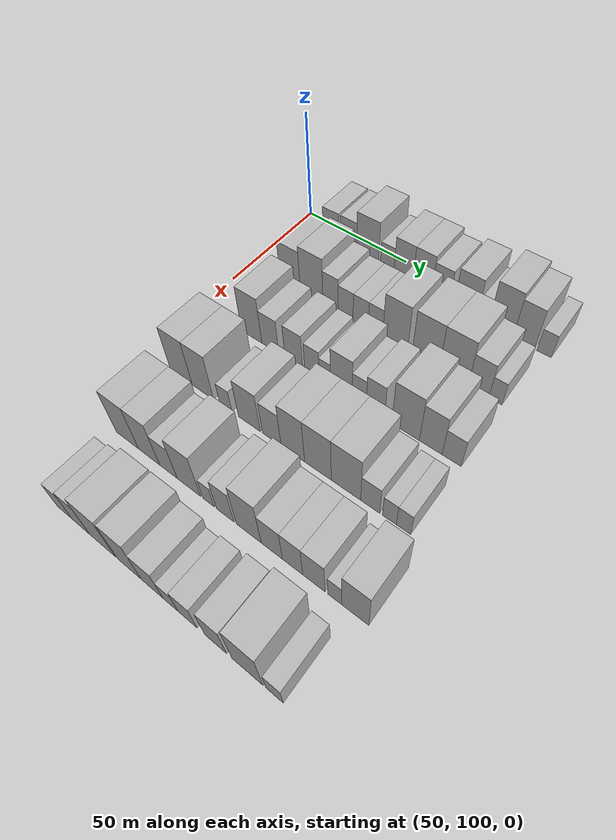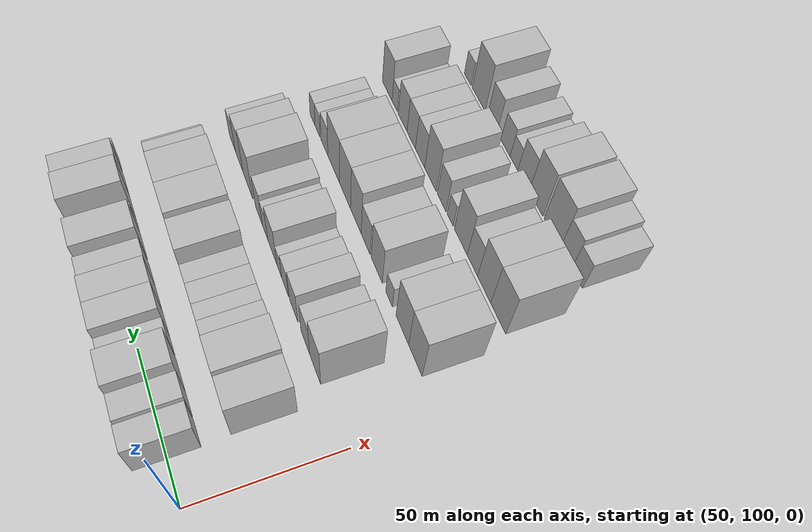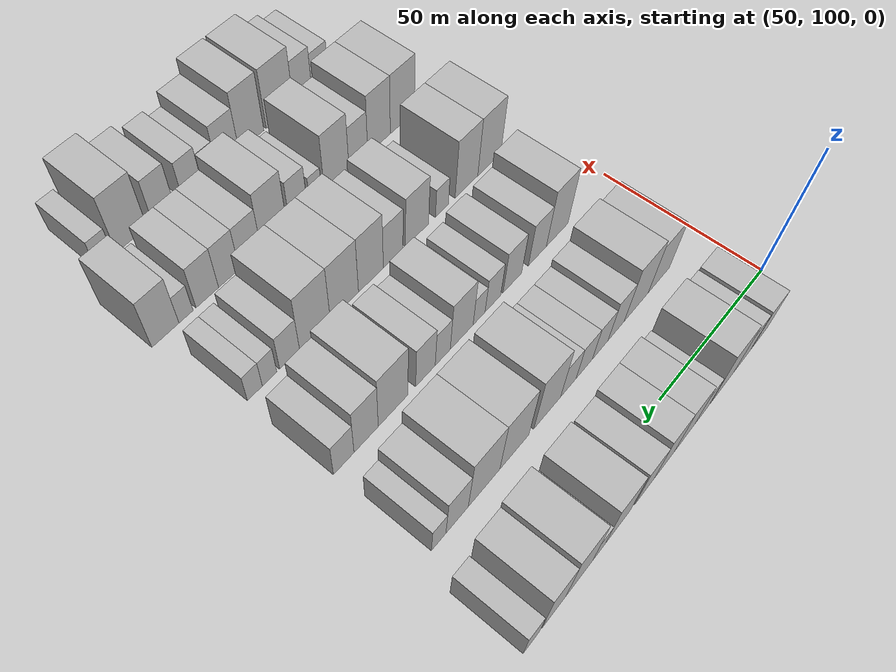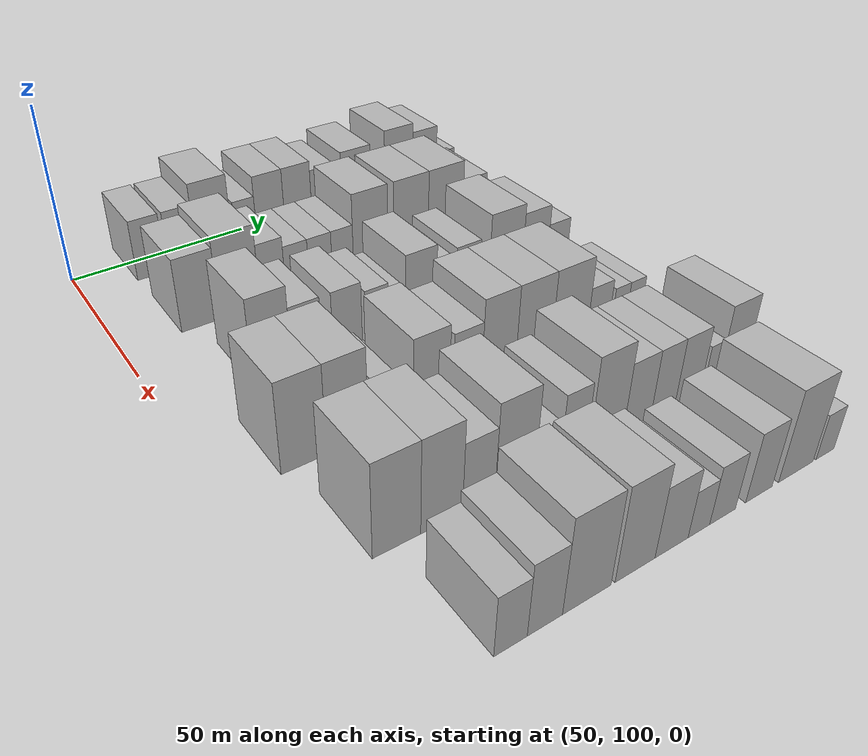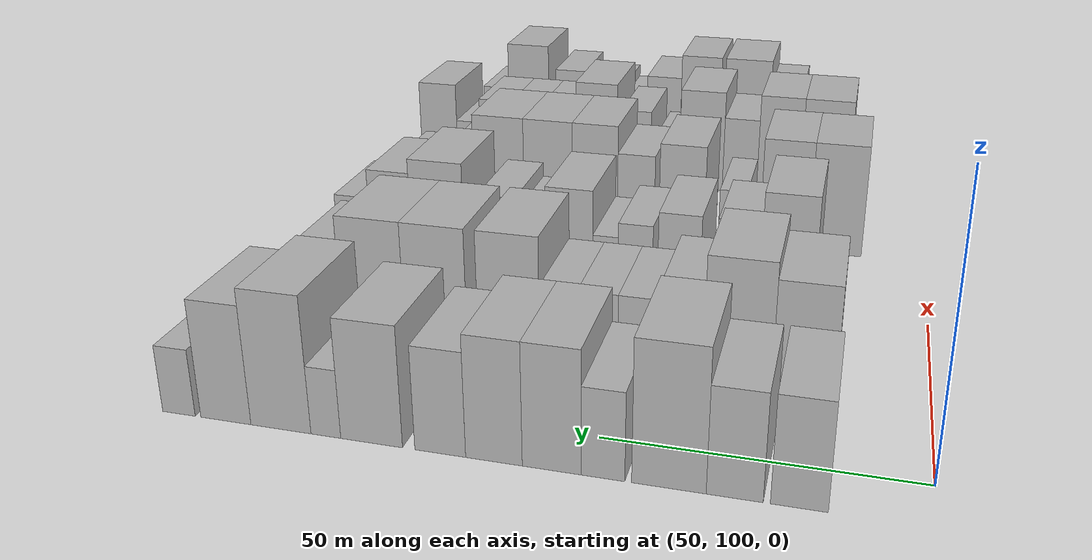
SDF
<sdf version="1.6">
 <world name="default">
  <model name="building_70">
   <static>1</static>
   <pose>50.0000 118.7033 0 0.000000 0.000000 0.000000</pose>
   <link name="link">
    <pose>0 0 9.00 0 0 0</pose>
    <collision name="collision"><geometry><box><size>20.0000 8.0889 18.0000</size></box></geometry></collision>
    <visual name="visual">
     <cast_shadows>0</cast_shadows>
     <geometry><box><size>20.0000 8.0889 18.0000</size></box></geometry>
     <material>
      <script>
       <uri>model://HANNAS_wall/materials/scripts</uri>
       <uri>model://HANNAS_wall/materials/textures</uri>
       <name>vrc/HANNAS_wall</name>
      </script>
     </material>
    </visual>
   </link>
  </model>
  <model name="building_71">
   <static>1</static>
   <pose>50.0000 127.8200 0 0.000000 0.000000 0.000000</pose>
   <link name="link">
    <pose>0 0 9.00 0 0 0</pose>
    <collision name="collision"><geometry><box><size>20.0000 8.1446 18.0000</size></box></geometry></collision>
    <visual name="visual">
     <cast_shadows>0</cast_shadows>
     <geometry><box><size>20.0000 8.1446 18.0000</size></box></geometry>
     <material>
      <script>
       <uri>model://HANNAS_wall/materials/scripts</uri>
       <uri>model://HANNAS_wall/materials/textures</uri>
       <name>vrc/HANNAS_wall</name>
      </script>
     </material>
    </visual>
   </link>
  </model>
  <model name="building_72">
   <static>1</static>
   <pose>50.0000 137.3575 0 0.000000 0.000000 0.000000</pose>
   <link name="link">
    <pose>0 0 12.00 0 0 0</pose>
    <collision name="collision"><geometry><box><size>20.0000 10.9302 24.0000</size></box></geometry></collision>
    <visual name="visual">
     <cast_shadows>0</cast_shadows>
     <geometry><box><size>20.0000 10.9302 24.0000</size></box></geometry>
     <material>
      <script>
       <uri>model://HANNAS_wall/materials/scripts</uri>
       <uri>model://HANNAS_wall/materials/textures</uri>
       <name>vrc/HANNAS_wall</name>
      </script>
     </material>
    </visual>
   </link>
  </model>
  <model name="building_73">
   <static>1</static>
   <pose>50.0000 147.1158 0 0.000000 0.000000 0.000000</pose>
   <link name="link">
    <pose>0 0 7.50 0 0 0</pose>
    <collision name="collision"><geometry><box><size>20.0000 6.5864 15.0000</size></box></geometry></collision>
    <visual name="visual">
     <cast_shadows>0</cast_shadows>
     <geometry><box><size>20.0000 6.5864 15.0000</size></box></geometry>
     <material>
      <script>
       <uri>model://HANNAS_wall/materials/scripts</uri>
       <uri>model://HANNAS_wall/materials/textures</uri>
       <name>vrc/HANNAS_wall</name>
      </script>
     </material>
    </visual>
   </link>
  </model>
  <model name="building_74">
   <static>1</static>
   <pose>50.0000 154.9128 0 0.000000 0.000000 0.000000</pose>
   <link name="link">
    <pose>0 0 10.50 0 0 0</pose>
    <collision name="collision"><geometry><box><size>20.0000 9.0077 21.0000</size></box></geometry></collision>
    <visual name="visual">
     <cast_shadows>0</cast_shadows>
     <geometry><box><size>20.0000 9.0077 21.0000</size></box></geometry>
     <material>
      <script>
       <uri>model://HANNAS_wall/materials/scripts</uri>
       <uri>model://HANNAS_wall/materials/textures</uri>
       <name>vrc/HANNAS_wall</name>
      </script>
     </material>
    </visual>
   </link>
  </model>
  <model name="building_75">
   <static>1</static>
   <pose>50.0000 163.8682 0 0.000000 0.000000 0.000000</pose>
   <link name="link">
    <pose>0 0 10.50 0 0 0</pose>
    <collision name="collision"><geometry><box><size>20.0000 8.9032 21.0000</size></box></geometry></collision>
    <visual name="visual">
     <cast_shadows>0</cast_shadows>
     <geometry><box><size>20.0000 8.9032 21.0000</size></box></geometry>
     <material>
      <script>
       <uri>model://HANNAS_wall/materials/scripts</uri>
       <uri>model://HANNAS_wall/materials/textures</uri>
       <name>vrc/HANNAS_wall</name>
      </script>
     </material>
    </visual>
   </link>
  </model>
  <model name="building_76">
   <static>1</static>
   <pose>50.0000 172.4005 0 0.000000 0.000000 0.000000</pose>
   <link name="link">
    <pose>0 0 9.00 0 0 0</pose>
    <collision name="collision"><geometry><box><size>20.0000 8.1613 18.0000</size></box></geometry></collision>
    <visual name="visual">
     <cast_shadows>0</cast_shadows>
     <geometry><box><size>20.0000 8.1613 18.0000</size></box></geometry>
     <material>
      <script>
       <uri>model://HANNAS_wall/materials/scripts</uri>
       <uri>model://HANNAS_wall/materials/textures</uri>
       <name>vrc/HANNAS_wall</name>
      </script>
     </material>
    </visual>
   </link>
  </model>
  <model name="building_77">
   <static>1</static>
   <pose>50.0000 183.5862 0 0.000000 0.000000 0.000000</pose>
   <link name="link">
    <pose>0 0 10.50 0 0 0</pose>
    <collision name="collision"><geometry><box><size>20.0000 10.2101 21.0000</size></box></geometry></collision>
    <visual name="visual">
     <cast_shadows>0</cast_shadows>
     <geometry><box><size>20.0000 10.2101 21.0000</size></box></geometry>
     <material>
      <script>
       <uri>model://HANNAS_wall/materials/scripts</uri>
       <uri>model://HANNAS_wall/materials/textures</uri>
       <name>vrc/HANNAS_wall</name>
      </script>
     </material>
    </visual>
   </link>
  </model>
  <model name="building_78">
   <static>1</static>
   <pose>50.0000 191.1960 0 0.000000 0.000000 0.000000</pose>
   <link name="link">
    <pose>0 0 6.00 0 0 0</pose>
    <collision name="collision"><geometry><box><size>20.0000 5.0096 12.0000</size></box></geometry></collision>
    <visual name="visual">
     <cast_shadows>0</cast_shadows>
     <geometry><box><size>20.0000 5.0096 12.0000</size></box></geometry>
     <material>
      <script>
       <uri>model://HANNAS_wall/materials/scripts</uri>
       <uri>model://HANNAS_wall/materials/textures</uri>
       <name>vrc/HANNAS_wall</name>
      </script>
     </material>
    </visual>
   </link>
  </model>
  <model name="building_79">
   <static>1</static>
   <pose>50.0000 198.8575 0 0.000000 0.000000 0.000000</pose>
   <link name="link">
    <pose>0 0 12.00 0 0 0</pose>
    <collision name="collision"><geometry><box><size>20.0000 10.3134 24.0000</size></box></geometry></collision>
    <visual name="visual">
     <cast_shadows>0</cast_shadows>
     <geometry><box><size>20.0000 10.3134 24.0000</size></box></geometry>
     <material>
      <script>
       <uri>model://HANNAS_wall/materials/scripts</uri>
       <uri>model://HANNAS_wall/materials/textures</uri>
       <name>vrc/HANNAS_wall</name>
      </script>
     </material>
    </visual>
   </link>
  </model>
  <model name="building_80">
   <static>1</static>
   <pose>50.0000 208.4200 0 0.000000 0.000000 0.000000</pose>
   <link name="link">
    <pose>0 0 10.50 0 0 0</pose>
    <collision name="collision"><geometry><box><size>20.0000 8.8116 21.0000</size></box></geometry></collision>
    <visual name="visual">
     <cast_shadows>0</cast_shadows>
     <geometry><box><size>20.0000 8.8116 21.0000</size></box></geometry>
     <material>
      <script>
       <uri>model://HANNAS_wall/materials/scripts</uri>
       <uri>model://HANNAS_wall/materials/textures</uri>
       <name>vrc/HANNAS_wall</name>
      </script>
     </material>
    </visual>
   </link>
  </model>
  <model name="building_81">
   <static>1</static>
   <pose>50.0000 216.7324 0 0.000000 0.000000 0.000000</pose>
   <link name="link">
    <pose>0 0 6.00 0 0 0</pose>
    <collision name="collision"><geometry><box><size>20.0000 5.8131 12.0000</size></box></geometry></collision>
    <visual name="visual">
     <cast_shadows>0</cast_shadows>
     <geometry><box><size>20.0000 5.8131 12.0000</size></box></geometry>
     <material>
      <script>
       <uri>model://HANNAS_wall/materials/scripts</uri>
       <uri>model://HANNAS_wall/materials/textures</uri>
       <name>vrc/HANNAS_wall</name>
      </script>
     </material>
    </visual>
   </link>
  </model>
  <model name="building_175">
   <static>1</static>
   <pose>79.0000 120.4273 0 0.000000 0.000000 0.000000</pose>
   <link name="link">
    <pose>0 0 10.50 0 0 0</pose>
    <collision name="collision"><geometry><box><size>20.0000 10.3157 21.0000</size></box></geometry></collision>
    <visual name="visual">
     <cast_shadows>0</cast_shadows>
     <geometry><box><size>20.0000 10.3157 21.0000</size></box></geometry>
     <material>
      <script>
       <uri>model://HANNAS_wall/materials/scripts</uri>
       <uri>model://HANNAS_wall/materials/textures</uri>
       <name>vrc/HANNAS_wall</name>
      </script>
     </material>
    </visual>
   </link>
  </model>
  <model name="building_176">
   <static>1</static>
   <pose>79.0000 131.2692 0 0.000000 0.000000 0.000000</pose>
   <link name="link">
    <pose>0 0 12.00 0 0 0</pose>
    <collision name="collision"><geometry><box><size>20.0000 11.3682 24.0000</size></box></geometry></collision>
    <visual name="visual">
     <cast_shadows>0</cast_shadows>
     <geometry><box><size>20.0000 11.3682 24.0000</size></box></geometry>
     <material>
      <script>
       <uri>model://HANNAS_wall/materials/scripts</uri>
       <uri>model://HANNAS_wall/materials/textures</uri>
       <name>vrc/HANNAS_wall</name>
      </script>
     </material>
    </visual>
   </link>
  </model>
  <model name="building_177">
   <static>1</static>
   <pose>79.0000 140.6771 0 0.000000 0.000000 0.000000</pose>
   <link name="link">
    <pose>0 0 9.00 0 0 0</pose>
    <collision name="collision"><geometry><box><size>20.0000 7.4476 18.0000</size></box></geometry></collision>
    <visual name="visual">
     <cast_shadows>0</cast_shadows>
     <geometry><box><size>20.0000 7.4476 18.0000</size></box></geometry>
     <material>
      <script>
       <uri>model://HANNAS_wall/materials/scripts</uri>
       <uri>model://HANNAS_wall/materials/textures</uri>
       <name>vrc/HANNAS_wall</name>
      </script>
     </material>
    </visual>
   </link>
  </model>
  <model name="building_178">
   <static>1</static>
   <pose>79.0000 147.9046 0 0.000000 0.000000 0.000000</pose>
   <link name="link">
    <pose>0 0 7.50 0 0 0</pose>
    <collision name="collision"><geometry><box><size>20.0000 7.0075 15.0000</size></box></geometry></collision>
    <visual name="visual">
     <cast_shadows>0</cast_shadows>
     <geometry><box><size>20.0000 7.0075 15.0000</size></box></geometry>
     <material>
      <script>
       <uri>model://HANNAS_wall/materials/scripts</uri>
       <uri>model://HANNAS_wall/materials/textures</uri>
       <name>vrc/HANNAS_wall</name>
      </script>
     </material>
    </visual>
   </link>
  </model>
  <model name="building_179">
   <static>1</static>
   <pose>79.0000 154.9412 0 0.000000 0.000000 0.000000</pose>
   <link name="link">
    <pose>0 0 7.50 0 0 0</pose>
    <collision name="collision"><geometry><box><size>20.0000 7.0657 15.0000</size></box></geometry></collision>
    <visual name="visual">
     <cast_shadows>0</cast_shadows>
     <geometry><box><size>20.0000 7.0657 15.0000</size></box></geometry>
     <material>
      <script>
       <uri>model://HANNAS_wall/materials/scripts</uri>
       <uri>model://HANNAS_wall/materials/textures</uri>
       <name>vrc/HANNAS_wall</name>
      </script>
     </material>
    </visual>
   </link>
  </model>
  <model name="building_180">
   <static>1</static>
   <pose>79.0000 161.7902 0 0.000000 0.000000 0.000000</pose>
   <link name="link">
    <pose>0 0 7.50 0 0 0</pose>
    <collision name="collision"><geometry><box><size>20.0000 6.6323 15.0000</size></box></geometry></collision>
    <visual name="visual">
     <cast_shadows>0</cast_shadows>
     <geometry><box><size>20.0000 6.6323 15.0000</size></box></geometry>
     <material>
      <script>
       <uri>model://HANNAS_wall/materials/scripts</uri>
       <uri>model://HANNAS_wall/materials/textures</uri>
       <name>vrc/HANNAS_wall</name>
      </script>
     </material>
    </visual>
   </link>
  </model>
  <model name="building_181">
   <static>1</static>
   <pose>79.0000 170.6382 0 0.000000 0.000000 0.000000</pose>
   <link name="link">
    <pose>0 0 12.00 0 0 0</pose>
    <collision name="collision"><geometry><box><size>20.0000 11.0636 24.0000</size></box></geometry></collision>
    <visual name="visual">
     <cast_shadows>0</cast_shadows>
     <geometry><box><size>20.0000 11.0636 24.0000</size></box></geometry>
     <material>
      <script>
       <uri>model://HANNAS_wall/materials/scripts</uri>
       <uri>model://HANNAS_wall/materials/textures</uri>
       <name>vrc/HANNAS_wall</name>
      </script>
     </material>
    </visual>
   </link>
  </model>
  <model name="building_182">
   <static>1</static>
   <pose>79.0000 183.9494 0 0.000000 0.000000 0.000000</pose>
   <link name="link">
    <pose>0 0 12.00 0 0 0</pose>
    <collision name="collision"><geometry><box><size>20.0000 11.5588 24.0000</size></box></geometry></collision>
    <visual name="visual">
     <cast_shadows>0</cast_shadows>
     <geometry><box><size>20.0000 11.5588 24.0000</size></box></geometry>
     <material>
      <script>
       <uri>model://HANNAS_wall/materials/scripts</uri>
       <uri>model://HANNAS_wall/materials/textures</uri>
       <name>vrc/HANNAS_wall</name>
      </script>
     </material>
    </visual>
   </link>
  </model>
  <model name="building_183">
   <static>1</static>
   <pose>79.0000 195.7155 0 0.000000 0.000000 0.000000</pose>
   <link name="link">
    <pose>0 0 12.00 0 0 0</pose>
    <collision name="collision"><geometry><box><size>20.0000 11.9734 24.0000</size></box></geometry></collision>
    <visual name="visual">
     <cast_shadows>0</cast_shadows>
     <geometry><box><size>20.0000 11.9734 24.0000</size></box></geometry>
     <material>
      <script>
       <uri>model://HANNAS_wall/materials/scripts</uri>
       <uri>model://HANNAS_wall/materials/textures</uri>
       <name>vrc/HANNAS_wall</name>
      </script>
     </material>
    </visual>
   </link>
  </model>
  <model name="building_184">
   <static>1</static>
   <pose>79.0000 205.8262 0 0.000000 0.000000 0.000000</pose>
   <link name="link">
    <pose>0 0 9.00 0 0 0</pose>
    <collision name="collision"><geometry><box><size>20.0000 8.2482 18.0000</size></box></geometry></collision>
    <visual name="visual">
     <cast_shadows>0</cast_shadows>
     <geometry><box><size>20.0000 8.2482 18.0000</size></box></geometry>
     <material>
      <script>
       <uri>model://HANNAS_wall/materials/scripts</uri>
       <uri>model://HANNAS_wall/materials/textures</uri>
       <name>vrc/HANNAS_wall</name>
      </script>
     </material>
    </visual>
   </link>
  </model>
  <model name="building_185">
   <static>1</static>
   <pose>79.0000 212.5347 0 0.000000 0.000000 0.000000</pose>
   <link name="link">
    <pose>0 0 6.00 0 0 0</pose>
    <collision name="collision"><geometry><box><size>20.0000 5.1687 12.0000</size></box></geometry></collision>
    <visual name="visual">
     <cast_shadows>0</cast_shadows>
     <geometry><box><size>20.0000 5.1687 12.0000</size></box></geometry>
     <material>
      <script>
       <uri>model://HANNAS_wall/materials/scripts</uri>
       <uri>model://HANNAS_wall/materials/textures</uri>
       <name>vrc/HANNAS_wall</name>
      </script>
     </material>
    </visual>
   </link>
  </model>
  <model name="building_290">
   <static>1</static>
   <pose>108.0000 125.8195 0 0.000000 0.000000 0.000000</pose>
   <link name="link">
    <pose>0 0 12.00 0 0 0</pose>
    <collision name="collision"><geometry><box><size>20.0000 10.0725 24.0000</size></box></geometry></collision>
    <visual name="visual">
     <cast_shadows>0</cast_shadows>
     <geometry><box><size>20.0000 10.0725 24.0000</size></box></geometry>
     <material>
      <script>
       <uri>model://HANNAS_wall/materials/scripts</uri>
       <uri>model://HANNAS_wall/materials/textures</uri>
       <name>vrc/HANNAS_wall</name>
      </script>
     </material>
    </visual>
   </link>
  </model>
  <model name="building_291">
   <static>1</static>
   <pose>108.0000 134.9345 0 0.000000 0.000000 0.000000</pose>
   <link name="link">
    <pose>0 0 9.00 0 0 0</pose>
    <collision name="collision"><geometry><box><size>20.0000 8.1575 18.0000</size></box></geometry></collision>
    <visual name="visual">
     <cast_shadows>0</cast_shadows>
     <geometry><box><size>20.0000 8.1575 18.0000</size></box></geometry>
     <material>
      <script>
       <uri>model://HANNAS_wall/materials/scripts</uri>
       <uri>model://HANNAS_wall/materials/textures</uri>
       <name>vrc/HANNAS_wall</name>
      </script>
     </material>
    </visual>
   </link>
  </model>
  <model name="building_292">
   <static>1</static>
   <pose>108.0000 146.1019 0 0.000000 0.000000 0.000000</pose>
   <link name="link">
    <pose>0 0 9.00 0 0 0</pose>
    <collision name="collision"><geometry><box><size>20.0000 8.1774 18.0000</size></box></geometry></collision>
    <visual name="visual">
     <cast_shadows>0</cast_shadows>
     <geometry><box><size>20.0000 8.1774 18.0000</size></box></geometry>
     <material>
      <script>
       <uri>model://HANNAS_wall/materials/scripts</uri>
       <uri>model://HANNAS_wall/materials/textures</uri>
       <name>vrc/HANNAS_wall</name>
      </script>
     </material>
    </visual>
   </link>
  </model>
  <model name="building_293">
   <static>1</static>
   <pose>108.0000 154.5231 0 0.000000 0.000000 0.000000</pose>
   <link name="link">
    <pose>0 0 7.50 0 0 0</pose>
    <collision name="collision"><geometry><box><size>20.0000 6.6649 15.0000</size></box></geometry></collision>
    <visual name="visual">
     <cast_shadows>0</cast_shadows>
     <geometry><box><size>20.0000 6.6649 15.0000</size></box></geometry>
     <material>
      <script>
       <uri>model://HANNAS_wall/materials/scripts</uri>
       <uri>model://HANNAS_wall/materials/textures</uri>
       <name>vrc/HANNAS_wall</name>
      </script>
     </material>
    </visual>
   </link>
  </model>
  <model name="building_294">
   <static>1</static>
   <pose>108.0000 160.3654 0 0.000000 0.000000 0.000000</pose>
   <link name="link">
    <pose>0 0 6.00 0 0 0</pose>
    <collision name="collision"><geometry><box><size>20.0000 5.0198 12.0000</size></box></geometry></collision>
    <visual name="visual">
     <cast_shadows>0</cast_shadows>
     <geometry><box><size>20.0000 5.0198 12.0000</size></box></geometry>
     <material>
      <script>
       <uri>model://HANNAS_wall/materials/scripts</uri>
       <uri>model://HANNAS_wall/materials/textures</uri>
       <name>vrc/HANNAS_wall</name>
      </script>
     </material>
    </visual>
   </link>
  </model>
  <model name="building_295">
   <static>1</static>
   <pose>108.0000 167.5524 0 0.000000 0.000000 0.000000</pose>
   <link name="link">
    <pose>0 0 10.50 0 0 0</pose>
    <collision name="collision"><geometry><box><size>20.0000 9.3542 21.0000</size></box></geometry></collision>
    <visual name="visual">
     <cast_shadows>0</cast_shadows>
     <geometry><box><size>20.0000 9.3542 21.0000</size></box></geometry>
     <material>
      <script>
       <uri>model://HANNAS_wall/materials/scripts</uri>
       <uri>model://HANNAS_wall/materials/textures</uri>
       <name>vrc/HANNAS_wall</name>
      </script>
     </material>
    </visual>
   </link>
  </model>
  <model name="building_296">
   <static>1</static>
   <pose>108.0000 175.2363 0 0.000000 0.000000 0.000000</pose>
   <link name="link">
    <pose>0 0 7.50 0 0 0</pose>
    <collision name="collision"><geometry><box><size>20.0000 6.0135 15.0000</size></box></geometry></collision>
    <visual name="visual">
     <cast_shadows>0</cast_shadows>
     <geometry><box><size>20.0000 6.0135 15.0000</size></box></geometry>
     <material>
      <script>
       <uri>model://HANNAS_wall/materials/scripts</uri>
       <uri>model://HANNAS_wall/materials/textures</uri>
       <name>vrc/HANNAS_wall</name>
      </script>
     </material>
    </visual>
   </link>
  </model>
  <model name="building_297">
   <static>1</static>
   <pose>108.0000 182.0620 0 0.000000 0.000000 0.000000</pose>
   <link name="link">
    <pose>0 0 9.00 0 0 0</pose>
    <collision name="collision"><geometry><box><size>20.0000 7.6379 18.0000</size></box></geometry></collision>
    <visual name="visual">
     <cast_shadows>0</cast_shadows>
     <geometry><box><size>20.0000 7.6379 18.0000</size></box></geometry>
     <material>
      <script>
       <uri>model://HANNAS_wall/materials/scripts</uri>
       <uri>model://HANNAS_wall/materials/textures</uri>
       <name>vrc/HANNAS_wall</name>
      </script>
     </material>
    </visual>
   </link>
  </model>
  <model name="building_298">
   <static>1</static>
   <pose>108.0000 194.4255 0 0.000000 0.000000 0.000000</pose>
   <link name="link">
    <pose>0 0 12.00 0 0 0</pose>
    <collision name="collision"><geometry><box><size>20.0000 11.0891 24.0000</size></box></geometry></collision>
    <visual name="visual">
     <cast_shadows>0</cast_shadows>
     <geometry><box><size>20.0000 11.0891 24.0000</size></box></geometry>
     <material>
      <script>
       <uri>model://HANNAS_wall/materials/scripts</uri>
       <uri>model://HANNAS_wall/materials/textures</uri>
       <name>vrc/HANNAS_wall</name>
      </script>
     </material>
    </visual>
   </link>
  </model>
  <model name="building_299">
   <static>1</static>
   <pose>108.0000 204.3585 0 0.000000 0.000000 0.000000</pose>
   <link name="link">
    <pose>0 0 10.50 0 0 0</pose>
    <collision name="collision"><geometry><box><size>20.0000 8.7770 21.0000</size></box></geometry></collision>
    <visual name="visual">
     <cast_shadows>0</cast_shadows>
     <geometry><box><size>20.0000 8.7770 21.0000</size></box></geometry>
     <material>
      <script>
       <uri>model://HANNAS_wall/materials/scripts</uri>
       <uri>model://HANNAS_wall/materials/textures</uri>
       <name>vrc/HANNAS_wall</name>
      </script>
     </material>
    </visual>
   </link>
  </model>
  <model name="building_300">
   <static>1</static>
   <pose>108.0000 212.3759 0 0.000000 0.000000 0.000000</pose>
   <link name="link">
    <pose>0 0 7.50 0 0 0</pose>
    <collision name="collision"><geometry><box><size>20.0000 7.2579 15.0000</size></box></geometry></collision>
    <visual name="visual">
     <cast_shadows>0</cast_shadows>
     <geometry><box><size>20.0000 7.2579 15.0000</size></box></geometry>
     <material>
      <script>
       <uri>model://HANNAS_wall/materials/scripts</uri>
       <uri>model://HANNAS_wall/materials/textures</uri>
       <name>vrc/HANNAS_wall</name>
      </script>
     </material>
    </visual>
   </link>
  </model>
  <model name="building_394">
   <static>1</static>
   <pose>137.0000 118.3097 0 0.000000 0.000000 0.000000</pose>
   <link name="link">
    <pose>0 0 12.00 0 0 0</pose>
    <collision name="collision"><geometry><box><size>20.0000 10.7246 24.0000</size></box></geometry></collision>
    <visual name="visual">
     <cast_shadows>0</cast_shadows>
     <geometry><box><size>20.0000 10.7246 24.0000</size></box></geometry>
     <material>
      <script>
       <uri>model://HANNAS_wall/materials/scripts</uri>
       <uri>model://HANNAS_wall/materials/textures</uri>
       <name>vrc/HANNAS_wall</name>
      </script>
     </material>
    </visual>
   </link>
  </model>
  <model name="building_395">
   <static>1</static>
   <pose>137.0000 128.8109 0 0.000000 0.000000 0.000000</pose>
   <link name="link">
    <pose>0 0 12.00 0 0 0</pose>
    <collision name="collision"><geometry><box><size>20.0000 10.2777 24.0000</size></box></geometry></collision>
    <visual name="visual">
     <cast_shadows>0</cast_shadows>
     <geometry><box><size>20.0000 10.2777 24.0000</size></box></geometry>
     <material>
      <script>
       <uri>model://HANNAS_wall/materials/scripts</uri>
       <uri>model://HANNAS_wall/materials/textures</uri>
       <name>vrc/HANNAS_wall</name>
      </script>
     </material>
    </visual>
   </link>
  </model>
  <model name="building_396">
   <static>1</static>
   <pose>137.0000 139.7769 0 0.000000 0.000000 0.000000</pose>
   <link name="link">
    <pose>0 0 6.00 0 0 0</pose>
    <collision name="collision"><geometry><box><size>20.0000 5.6543 12.0000</size></box></geometry></collision>
    <visual name="visual">
     <cast_shadows>0</cast_shadows>
     <geometry><box><size>20.0000 5.6543 12.0000</size></box></geometry>
     <material>
      <script>
       <uri>model://HANNAS_wall/materials/scripts</uri>
       <uri>model://HANNAS_wall/materials/textures</uri>
       <name>vrc/HANNAS_wall</name>
      </script>
     </material>
    </visual>
   </link>
  </model>
  <model name="building_397">
   <static>1</static>
   <pose>137.0000 150.5144 0 0.000000 0.000000 0.000000</pose>
   <link name="link">
    <pose>0 0 10.50 0 0 0</pose>
    <collision name="collision"><geometry><box><size>20.0000 9.8208 21.0000</size></box></geometry></collision>
    <visual name="visual">
     <cast_shadows>0</cast_shadows>
     <geometry><box><size>20.0000 9.8208 21.0000</size></box></geometry>
     <material>
      <script>
       <uri>model://HANNAS_wall/materials/scripts</uri>
       <uri>model://HANNAS_wall/materials/textures</uri>
       <name>vrc/HANNAS_wall</name>
      </script>
     </material>
    </visual>
   </link>
  </model>
  <model name="building_398">
   <static>1</static>
   <pose>137.0000 160.4591 0 0.000000 0.000000 0.000000</pose>
   <link name="link">
    <pose>0 0 9.00 0 0 0</pose>
    <collision name="collision"><geometry><box><size>20.0000 8.0686 18.0000</size></box></geometry></collision>
    <visual name="visual">
     <cast_shadows>0</cast_shadows>
     <geometry><box><size>20.0000 8.0686 18.0000</size></box></geometry>
     <material>
      <script>
       <uri>model://HANNAS_wall/materials/scripts</uri>
       <uri>model://HANNAS_wall/materials/textures</uri>
       <name>vrc/HANNAS_wall</name>
      </script>
     </material>
    </visual>
   </link>
  </model>
  <model name="building_399">
   <static>1</static>
   <pose>137.0000 169.4658 0 0.000000 0.000000 0.000000</pose>
   <link name="link">
    <pose>0 0 12.00 0 0 0</pose>
    <collision name="collision"><geometry><box><size>20.0000 9.9449 24.0000</size></box></geometry></collision>
    <visual name="visual">
     <cast_shadows>0</cast_shadows>
     <geometry><box><size>20.0000 9.9449 24.0000</size></box></geometry>
     <material>
      <script>
       <uri>model://HANNAS_wall/materials/scripts</uri>
       <uri>model://HANNAS_wall/materials/textures</uri>
       <name>vrc/HANNAS_wall</name>
      </script>
     </material>
    </visual>
   </link>
  </model>
  <model name="building_400">
   <static>1</static>
   <pose>137.0000 179.9068 0 0.000000 0.000000 0.000000</pose>
   <link name="link">
    <pose>0 0 12.00 0 0 0</pose>
    <collision name="collision"><geometry><box><size>20.0000 10.9370 24.0000</size></box></geometry></collision>
    <visual name="visual">
     <cast_shadows>0</cast_shadows>
     <geometry><box><size>20.0000 10.9370 24.0000</size></box></geometry>
     <material>
      <script>
       <uri>model://HANNAS_wall/materials/scripts</uri>
       <uri>model://HANNAS_wall/materials/textures</uri>
       <name>vrc/HANNAS_wall</name>
      </script>
     </material>
    </visual>
   </link>
  </model>
  <model name="building_401">
   <static>1</static>
   <pose>137.0000 191.1265 0 0.000000 0.000000 0.000000</pose>
   <link name="link">
    <pose>0 0 12.00 0 0 0</pose>
    <collision name="collision"><geometry><box><size>20.0000 11.5024 24.0000</size></box></geometry></collision>
    <visual name="visual">
     <cast_shadows>0</cast_shadows>
     <geometry><box><size>20.0000 11.5024 24.0000</size></box></geometry>
     <material>
      <script>
       <uri>model://HANNAS_wall/materials/scripts</uri>
       <uri>model://HANNAS_wall/materials/textures</uri>
       <name>vrc/HANNAS_wall</name>
      </script>
     </material>
    </visual>
   </link>
  </model>
  <model name="building_402">
   <static>1</static>
   <pose>137.0000 200.4938 0 0.000000 0.000000 0.000000</pose>
   <link name="link">
    <pose>0 0 7.50 0 0 0</pose>
    <collision name="collision"><geometry><box><size>20.0000 7.2321 15.0000</size></box></geometry></collision>
    <visual name="visual">
     <cast_shadows>0</cast_shadows>
     <geometry><box><size>20.0000 7.2321 15.0000</size></box></geometry>
     <material>
      <script>
       <uri>model://HANNAS_wall/materials/scripts</uri>
       <uri>model://HANNAS_wall/materials/textures</uri>
       <name>vrc/HANNAS_wall</name>
      </script>
     </material>
    </visual>
   </link>
  </model>
  <model name="building_403">
   <static>1</static>
   <pose>137.0000 207.6839 0 0.000000 0.000000 0.000000</pose>
   <link name="link">
    <pose>0 0 6.00 0 0 0</pose>
    <collision name="collision"><geometry><box><size>20.0000 5.1481 12.0000</size></box></geometry></collision>
    <visual name="visual">
     <cast_shadows>0</cast_shadows>
     <geometry><box><size>20.0000 5.1481 12.0000</size></box></geometry>
     <material>
      <script>
       <uri>model://HANNAS_wall/materials/scripts</uri>
       <uri>model://HANNAS_wall/materials/textures</uri>
       <name>vrc/HANNAS_wall</name>
      </script>
     </material>
    </visual>
   </link>
  </model>
  <model name="building_404">
   <static>1</static>
   <pose>137.0000 212.8643 0 0.000000 0.000000 0.000000</pose>
   <link name="link">
    <pose>0 0 6.00 0 0 0</pose>
    <collision name="collision"><geometry><box><size>20.0000 5.2127 12.0000</size></box></geometry></collision>
    <visual name="visual">
     <cast_shadows>0</cast_shadows>
     <geometry><box><size>20.0000 5.2127 12.0000</size></box></geometry>
     <material>
      <script>
       <uri>model://HANNAS_wall/materials/scripts</uri>
       <uri>model://HANNAS_wall/materials/textures</uri>
       <name>vrc/HANNAS_wall</name>
      </script>
     </material>
    </visual>
   </link>
  </model>
  <model name="building_514">
   <static>1</static>
   <pose>166.0000 122.3892 0 0.000000 0.000000 0.000000</pose>
   <link name="link">
    <pose>0 0 12.00 0 0 0</pose>
    <collision name="collision"><geometry><box><size>20.0000 10.9018 24.0000</size></box></geometry></collision>
    <visual name="visual">
     <cast_shadows>0</cast_shadows>
     <geometry><box><size>20.0000 10.9018 24.0000</size></box></geometry>
     <material>
      <script>
       <uri>model://HANNAS_wall/materials/scripts</uri>
       <uri>model://HANNAS_wall/materials/textures</uri>
       <name>vrc/HANNAS_wall</name>
      </script>
     </material>
    </visual>
   </link>
  </model>
  <model name="building_515">
   <static>1</static>
   <pose>166.0000 132.8039 0 0.000000 0.000000 0.000000</pose>
   <link name="link">
    <pose>0 0 12.00 0 0 0</pose>
    <collision name="collision"><geometry><box><size>20.0000 9.9276 24.0000</size></box></geometry></collision>
    <visual name="visual">
     <cast_shadows>0</cast_shadows>
     <geometry><box><size>20.0000 9.9276 24.0000</size></box></geometry>
     <material>
      <script>
       <uri>model://HANNAS_wall/materials/scripts</uri>
       <uri>model://HANNAS_wall/materials/textures</uri>
       <name>vrc/HANNAS_wall</name>
      </script>
     </material>
    </visual>
   </link>
  </model>
  <model name="building_516">
   <static>1</static>
   <pose>166.0000 141.7629 0 0.000000 0.000000 0.000000</pose>
   <link name="link">
    <pose>0 0 9.00 0 0 0</pose>
    <collision name="collision"><geometry><box><size>20.0000 7.9904 18.0000</size></box></geometry></collision>
    <visual name="visual">
     <cast_shadows>0</cast_shadows>
     <geometry><box><size>20.0000 7.9904 18.0000</size></box></geometry>
     <material>
      <script>
       <uri>model://HANNAS_wall/materials/scripts</uri>
       <uri>model://HANNAS_wall/materials/textures</uri>
       <name>vrc/HANNAS_wall</name>
      </script>
     </material>
    </visual>
   </link>
  </model>
  <model name="building_517">
   <static>1</static>
   <pose>166.0000 150.9082 0 0.000000 0.000000 0.000000</pose>
   <link name="link">
    <pose>0 0 12.00 0 0 0</pose>
    <collision name="collision"><geometry><box><size>20.0000 10.3003 24.0000</size></box></geometry></collision>
    <visual name="visual">
     <cast_shadows>0</cast_shadows>
     <geometry><box><size>20.0000 10.3003 24.0000</size></box></geometry>
     <material>
      <script>
       <uri>model://HANNAS_wall/materials/scripts</uri>
       <uri>model://HANNAS_wall/materials/textures</uri>
       <name>vrc/HANNAS_wall</name>
      </script>
     </material>
    </visual>
   </link>
  </model>
  <model name="building_518">
   <static>1</static>
   <pose>166.0000 159.4893 0 0.000000 0.000000 0.000000</pose>
   <link name="link">
    <pose>0 0 6.00 0 0 0</pose>
    <collision name="collision"><geometry><box><size>20.0000 4.8619 12.0000</size></box></geometry></collision>
    <visual name="visual">
     <cast_shadows>0</cast_shadows>
     <geometry><box><size>20.0000 4.8619 12.0000</size></box></geometry>
     <material>
      <script>
       <uri>model://HANNAS_wall/materials/scripts</uri>
       <uri>model://HANNAS_wall/materials/textures</uri>
       <name>vrc/HANNAS_wall</name>
      </script>
     </material>
    </visual>
   </link>
  </model>
  <model name="building_519">
   <static>1</static>
   <pose>166.0000 166.5242 0 0.000000 0.000000 0.000000</pose>
   <link name="link">
    <pose>0 0 9.00 0 0 0</pose>
    <collision name="collision"><geometry><box><size>20.0000 7.2081 18.0000</size></box></geometry></collision>
    <visual name="visual">
     <cast_shadows>0</cast_shadows>
     <geometry><box><size>20.0000 7.2081 18.0000</size></box></geometry>
     <material>
      <script>
       <uri>model://HANNAS_wall/materials/scripts</uri>
       <uri>model://HANNAS_wall/materials/textures</uri>
       <name>vrc/HANNAS_wall</name>
      </script>
     </material>
    </visual>
   </link>
  </model>
  <model name="building_520">
   <static>1</static>
   <pose>166.0000 176.1526 0 0.000000 0.000000 0.000000</pose>
   <link name="link">
    <pose>0 0 12.00 0 0 0</pose>
    <collision name="collision"><geometry><box><size>20.0000 10.0488 24.0000</size></box></geometry></collision>
    <visual name="visual">
     <cast_shadows>0</cast_shadows>
     <geometry><box><size>20.0000 10.0488 24.0000</size></box></geometry>
     <material>
      <script>
       <uri>model://HANNAS_wall/materials/scripts</uri>
       <uri>model://HANNAS_wall/materials/textures</uri>
       <name>vrc/HANNAS_wall</name>
      </script>
     </material>
    </visual>
   </link>
  </model>
  <model name="building_521">
   <static>1</static>
   <pose>166.0000 185.3236 0 0.000000 0.000000 0.000000</pose>
   <link name="link">
    <pose>0 0 9.00 0 0 0</pose>
    <collision name="collision"><geometry><box><size>20.0000 8.2933 18.0000</size></box></geometry></collision>
    <visual name="visual">
     <cast_shadows>0</cast_shadows>
     <geometry><box><size>20.0000 8.2933 18.0000</size></box></geometry>
     <material>
      <script>
       <uri>model://HANNAS_wall/materials/scripts</uri>
       <uri>model://HANNAS_wall/materials/textures</uri>
       <name>vrc/HANNAS_wall</name>
      </script>
     </material>
    </visual>
   </link>
  </model>
  <model name="building_522">
   <static>1</static>
   <pose>166.0000 193.2935 0 0.000000 0.000000 0.000000</pose>
   <link name="link">
    <pose>0 0 9.00 0 0 0</pose>
    <collision name="collision"><geometry><box><size>20.0000 7.6464 18.0000</size></box></geometry></collision>
    <visual name="visual">
     <cast_shadows>0</cast_shadows>
     <geometry><box><size>20.0000 7.6464 18.0000</size></box></geometry>
     <material>
      <script>
       <uri>model://HANNAS_wall/materials/scripts</uri>
       <uri>model://HANNAS_wall/materials/textures</uri>
       <name>vrc/HANNAS_wall</name>
      </script>
     </material>
    </visual>
   </link>
  </model>
  <model name="building_523">
   <static>1</static>
   <pose>166.0000 201.1977 0 0.000000 0.000000 0.000000</pose>
   <link name="link">
    <pose>0 0 9.00 0 0 0</pose>
    <collision name="collision"><geometry><box><size>20.0000 8.1620 18.0000</size></box></geometry></collision>
    <visual name="visual">
     <cast_shadows>0</cast_shadows>
     <geometry><box><size>20.0000 8.1620 18.0000</size></box></geometry>
     <material>
      <script>
       <uri>model://HANNAS_wall/materials/scripts</uri>
       <uri>model://HANNAS_wall/materials/textures</uri>
       <name>vrc/HANNAS_wall</name>
      </script>
     </material>
    </visual>
   </link>
  </model>
  <model name="building_524">
   <static>1</static>
   <pose>166.0000 208.7544 0 0.000000 0.000000 0.000000</pose>
   <link name="link">
    <pose>0 0 6.00 0 0 0</pose>
    <collision name="collision"><geometry><box><size>20.0000 4.9515 12.0000</size></box></geometry></collision>
    <visual name="visual">
     <cast_shadows>0</cast_shadows>
     <geometry><box><size>20.0000 4.9515 12.0000</size></box></geometry>
     <material>
      <script>
       <uri>model://HANNAS_wall/materials/scripts</uri>
       <uri>model://HANNAS_wall/materials/textures</uri>
       <name>vrc/HANNAS_wall</name>
      </script>
     </material>
    </visual>
   </link>
  </model>
  <model name="building_525">
   <static>1</static>
   <pose>166.0000 215.9018 0 0.000000 0.000000 0.000000</pose>
   <link name="link">
    <pose>0 0 10.50 0 0 0</pose>
    <collision name="collision"><geometry><box><size>20.0000 9.3433 21.0000</size></box></geometry></collision>
    <visual name="visual">
     <cast_shadows>0</cast_shadows>
     <geometry><box><size>20.0000 9.3433 21.0000</size></box></geometry>
     <material>
      <script>
       <uri>model://HANNAS_wall/materials/scripts</uri>
       <uri>model://HANNAS_wall/materials/textures</uri>
       <name>vrc/HANNAS_wall</name>
      </script>
     </material>
    </visual>
   </link>
  </model>
  <model name="building_626">
   <static>1</static>
   <pose>195.0000 126.4914 0 0.000000 0.000000 0.000000</pose>
   <link name="link">
    <pose>0 0 7.50 0 0 0</pose>
    <collision name="collision"><geometry><box><size>20.0000 7.2675 15.0000</size></box></geometry></collision>
    <visual name="visual">
     <cast_shadows>0</cast_shadows>
     <geometry><box><size>20.0000 7.2675 15.0000</size></box></geometry>
     <material>
      <script>
       <uri>model://HANNAS_wall/materials/scripts</uri>
       <uri>model://HANNAS_wall/materials/textures</uri>
       <name>vrc/HANNAS_wall</name>
      </script>
     </material>
    </visual>
   </link>
  </model>
  <model name="building_627">
   <static>1</static>
   <pose>195.0000 134.1030 0 0.000000 0.000000 0.000000</pose>
   <link name="link">
    <pose>0 0 9.00 0 0 0</pose>
    <collision name="collision"><geometry><box><size>20.0000 7.9558 18.0000</size></box></geometry></collision>
    <visual name="visual">
     <cast_shadows>0</cast_shadows>
     <geometry><box><size>20.0000 7.9558 18.0000</size></box></geometry>
     <material>
      <script>
       <uri>model://HANNAS_wall/materials/scripts</uri>
       <uri>model://HANNAS_wall/materials/textures</uri>
       <name>vrc/HANNAS_wall</name>
      </script>
     </material>
    </visual>
   </link>
  </model>
  <model name="building_628">
   <static>1</static>
   <pose>195.0000 143.8709 0 0.000000 0.000000 0.000000</pose>
   <link name="link">
    <pose>0 0 12.00 0 0 0</pose>
    <collision name="collision"><geometry><box><size>20.0000 11.5799 24.0000</size></box></geometry></collision>
    <visual name="visual">
     <cast_shadows>0</cast_shadows>
     <geometry><box><size>20.0000 11.5799 24.0000</size></box></geometry>
     <material>
      <script>
       <uri>model://HANNAS_wall/materials/scripts</uri>
       <uri>model://HANNAS_wall/materials/textures</uri>
       <name>vrc/HANNAS_wall</name>
      </script>
     </material>
    </visual>
   </link>
  </model>
  <model name="building_629">
   <static>1</static>
   <pose>195.0000 155.7382 0 0.000000 0.000000 0.000000</pose>
   <link name="link">
    <pose>0 0 12.00 0 0 0</pose>
    <collision name="collision"><geometry><box><size>20.0000 10.1548 24.0000</size></box></geometry></collision>
    <visual name="visual">
     <cast_shadows>0</cast_shadows>
     <geometry><box><size>20.0000 10.1548 24.0000</size></box></geometry>
     <material>
      <script>
       <uri>model://HANNAS_wall/materials/scripts</uri>
       <uri>model://HANNAS_wall/materials/textures</uri>
       <name>vrc/HANNAS_wall</name>
      </script>
     </material>
    </visual>
   </link>
  </model>
  <model name="building_630">
   <static>1</static>
   <pose>195.0000 165.2311 0 0.000000 0.000000 0.000000</pose>
   <link name="link">
    <pose>0 0 9.00 0 0 0</pose>
    <collision name="collision"><geometry><box><size>20.0000 8.8310 18.0000</size></box></geometry></collision>
    <visual name="visual">
     <cast_shadows>0</cast_shadows>
     <geometry><box><size>20.0000 8.8310 18.0000</size></box></geometry>
     <material>
      <script>
       <uri>model://HANNAS_wall/materials/scripts</uri>
       <uri>model://HANNAS_wall/materials/textures</uri>
       <name>vrc/HANNAS_wall</name>
      </script>
     </material>
    </visual>
   </link>
  </model>
  <model name="building_631">
   <static>1</static>
   <pose>195.0000 172.6461 0 0.000000 0.000000 0.000000</pose>
   <link name="link">
    <pose>0 0 6.00 0 0 0</pose>
    <collision name="collision"><geometry><box><size>20.0000 5.9990 12.0000</size></box></geometry></collision>
    <visual name="visual">
     <cast_shadows>0</cast_shadows>
     <geometry><box><size>20.0000 5.9990 12.0000</size></box></geometry>
     <material>
      <script>
       <uri>model://HANNAS_wall/materials/scripts</uri>
       <uri>model://HANNAS_wall/materials/textures</uri>
       <name>vrc/HANNAS_wall</name>
      </script>
     </material>
    </visual>
   </link>
  </model>
  <model name="building_632">
   <static>1</static>
   <pose>195.0000 179.3483 0 0.000000 0.000000 0.000000</pose>
   <link name="link">
    <pose>0 0 7.50 0 0 0</pose>
    <collision name="collision"><geometry><box><size>20.0000 7.4055 15.0000</size></box></geometry></collision>
    <visual name="visual">
     <cast_shadows>0</cast_shadows>
     <geometry><box><size>20.0000 7.4055 15.0000</size></box></geometry>
     <material>
      <script>
       <uri>model://HANNAS_wall/materials/scripts</uri>
       <uri>model://HANNAS_wall/materials/textures</uri>
       <name>vrc/HANNAS_wall</name>
      </script>
     </material>
    </visual>
   </link>
  </model>
  <model name="building_633">
   <static>1</static>
   <pose>195.0000 190.0657 0 0.000000 0.000000 0.000000</pose>
   <link name="link">
    <pose>0 0 9.00 0 0 0</pose>
    <collision name="collision"><geometry><box><size>20.0000 8.0292 18.0000</size></box></geometry></collision>
    <visual name="visual">
     <cast_shadows>0</cast_shadows>
     <geometry><box><size>20.0000 8.0292 18.0000</size></box></geometry>
     <material>
      <script>
       <uri>model://HANNAS_wall/materials/scripts</uri>
       <uri>model://HANNAS_wall/materials/textures</uri>
       <name>vrc/HANNAS_wall</name>
      </script>
     </material>
    </visual>
   </link>
  </model>
  <model name="building_634">
   <static>1</static>
   <pose>195.0000 201.5830 0 0.000000 0.000000 0.000000</pose>
   <link name="link">
    <pose>0 0 12.00 0 0 0</pose>
    <collision name="collision"><geometry><box><size>20.0000 11.0052 24.0000</size></box></geometry></collision>
    <visual name="visual">
     <cast_shadows>0</cast_shadows>
     <geometry><box><size>20.0000 11.0052 24.0000</size></box></geometry>
     <material>
      <script>
       <uri>model://HANNAS_wall/materials/scripts</uri>
       <uri>model://HANNAS_wall/materials/textures</uri>
       <name>vrc/HANNAS_wall</name>
      </script>
     </material>
    </visual>
   </link>
  </model>
  <model name="building_635">
   <static>1</static>
   <pose>195.0000 211.0539 0 0.000000 0.000000 0.000000</pose>
   <link name="link">
    <pose>0 0 6.00 0 0 0</pose>
    <collision name="collision"><geometry><box><size>20.0000 5.9366 12.0000</size></box></geometry></collision>
    <visual name="visual">
     <cast_shadows>0</cast_shadows>
     <geometry><box><size>20.0000 5.9366 12.0000</size></box></geometry>
     <material>
      <script>
       <uri>model://HANNAS_wall/materials/scripts</uri>
       <uri>model://HANNAS_wall/materials/textures</uri>
       <name>vrc/HANNAS_wall</name>
      </script>
     </material>
    </visual>
   </link>
  </model>
 </world>
</sdf>
